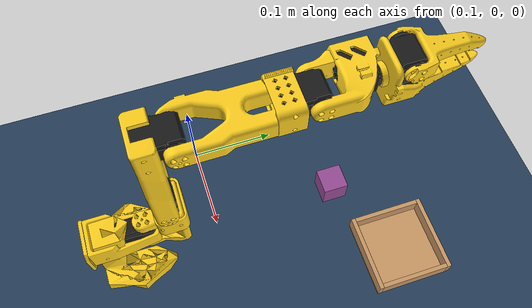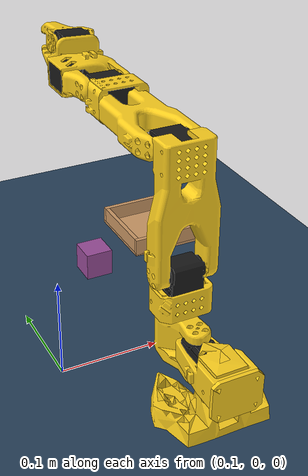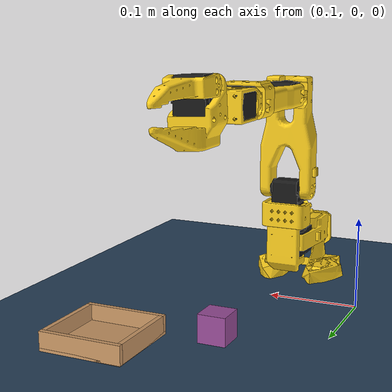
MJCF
<mujoco model="SO101_Pick_Scene">
    <include file="so101_new_calib.xml"/>

    <option timestep=".001" noslip_iterations="20" noslip_tolerance="1e-6">
      <!-- Improved contact solver for better grasping -->
      <!-- Smaller timestep = better contact resolution -->
      <flag contact="enable" override="enable"/>
    </option>

    <default>
      <!-- High friction for grasping -->
      <!-- solimp: softer contacts = better force distribution, less penetration -->
      <geom friction="1.0 0.005 0.0001" solimp="0.99 0.99 0.001" solref="0.01 1"/>
    </default>

    <statistic center="0.2 0.15 0.2" extent=".6"/>

    <visual>
      <headlight diffuse=".4 .4 .4" ambient=".5 .5 .5"/>
      <global azimuth="0" elevation="-30" offheight="480" offwidth="640"/>
      <quality offsamples="8"/>
    </visual>

    <asset>
      <texture type="skybox" builtin="gradient" rgb1=".3 .5 .7" rgb2="0 0 0" width="32" height="512"/>
      <texture name="grid" type="2d" builtin="checker" width="512" height="512" rgb1=".1 .2 .3" rgb2=".2 .3 .4"/>
      <material name="grid" texture="grid" texrepeat="30 30" texuniform="true" reflectance="0"/>
    </asset>

    <worldbody>
      <camera name="top" pos="0.2 0.25 0.5" quat="0.707107 0 0 0.707107" fovy="60"/>

      <!-- Front camera - angled view showing robot and workspace in front -->
      <camera name="front" pos="0.25 0.5 0.05" euler="-1.4 0.2 3.14159" fovy="65"/>
      <light pos="0 0 3" dir="0 0 -1" diffuse="1 1 1" specular=".3 .3 .3"/>
      <light pos="0.2 0.3 .5" mode="targetbodycom" target="block" diffuse=".8 .8 .8" specular=".3 .3 .3"/>
      <geom name="floor" size="3 3 0.01" type="plane" material="grid"/>

      <!-- Block for pick task - positioned in robot's forward workspace (+Y direction) -->
      <body name="block" pos="0.2 0.15 .015">
        <freejoint name="block"/>
        <!-- Block dimensions: 2cm x 3cm x 1.5cm -->
        <!-- High friction for reliable grasping -->
        <!-- margin: prevents penetration by adding a buffer around geometry -->
        <!-- condim: 4 = use friction cone with elliptic approximation for better grip -->
        <!-- softer solimp: allows slight deformation, better force distribution -->
        <geom name="block" type="box" size=".015 .015 .015" mass="0.05" rgba=".6 .3 .6 1"
              friction="2 0.01 0.0001" solimp="0.95 0.95 0.001" solref="0.02 1"
              margin="0.003" condim="4"/>
      </body>

      <!-- Container for drop task - positioned to the right of robot -->
      <body name="container" pos="0.3 0.2 0.01">
        <!-- Container dimensions: 9cm x 9cm x 2cm height (inner 8cm x 8cm) -->
        <!-- Wall thickness: 0.5cm, Wall height: 2cm -->

        <!-- Bottom plate -->
        <geom name="container_bottom" type="box" size="0.045 0.045 0.0025" pos="0 0 -0.00975" rgba="0.8 0.6 0.4 1"/>

        <!-- Side walls -->
        <geom name="container_side_x_neg" type="box" size="0.0025 0.04 0.01" pos="-0.0425 0 0" rgba="0.8 0.6 0.4 1"/>
        <geom name="container_side_x_pos" type="box" size="0.0025 0.04 0.01" pos="0.0425 0 0" rgba="0.8 0.6 0.4 1"/>
        <geom name="container_side_y_neg" type="box" size="0.045 0.0025 0.01" pos="0 -0.0425 0" rgba="0.8 0.6 0.4 1"/>
        <geom name="container_side_y_pos" type="box" size="0.045 0.0025 0.01" pos="0 0.0425 0" rgba="0.8 0.6 0.4 1"/>
      </body>

      <!-- Mocap target for operational space control -->
      <body name="target" pos="0.2 0.15 .3" quat="0 1 0 0" mocap="true">
        <geom name="target" type="box" size=".03 .03 .03" contype="0" conaffinity="0" rgba=".6 .3 .3 0"/>
      </body>
    </worldbody>

    <sensor>
      <framepos name="block_pos" objtype="geom" objname="block"/>
      <framequat name="block_quat" objtype="geom" objname="block"/>

      <!-- SO-101 end-effector sensors -->
      <framepos name="so101/ee_pos" objtype="site" objname="gripperframe"/>
      <framequat name="so101/ee_quat" objtype="site" objname="gripperframe"/>
      <framelinvel name="so101/ee_vel" objtype="site" objname="gripperframe"/>
      <frameangvel name="so101/ee_angvel" objtype="site" objname="gripperframe"/>
    </sensor>
  </mujoco>

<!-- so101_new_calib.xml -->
<!-- Generated using onshape-to-robot -->
<!-- Onshape https://cad.onshape.com/documents/7715cc284bb430fe6dab4ffd/w/4fd0791b683777b02f8d975a/e/826c553ede3b7592eb9ca800 -->
<mujoco model="so101_new_calib">
  <compiler angle="radian" meshdir="assets" autolimits="true"/>
  <default>
    <default class="so101_new_calib">
      <joint damping="1" frictionloss="0.1" armature="0.005"/>
      <position kp="50"/>
      <default class="visual">
        <geom type="mesh" contype="0" conaffinity="0" group="2"/>
      </default>
      <default class="collision">
        <geom group="3" friction="1.5 0.005 0.0001" solimp="0.95 0.95 0.001" solref="0.02 1" margin="0.003" condim="4"/>
      </default>
    </default>
  </default>
  <!-- Additional joints_properties.xml -->
  <default>
    <default class="sts3215">
      <geom contype="0" conaffinity="0"/>
      <joint damping="0.60" frictionloss="0.052" armature="0.028"/>
      <!-- For lerobot this are not exactly the motor params as the Kp and Kd not map 1-to-1 thus motor idendification with lerobot Kp=16 and Kd=32 should actually be done -->
      <position kp="17.8"/>
    </default>
    <default class="backlash">
      <!-- +/- 0.5° of backlash -->
      <joint damping="0.01" frictionloss="0" armature="0.01" limited="true" range="-0.008726646259971648 0.008726646259971648"/>
    </default>
  </default>
  <worldbody>
    <!-- Link base -->
    <!-- Robot oriented to point in +Y direction (forward), positioned at X=0.2m -->
    <!-- Base edge starts at Y=0.0, so base center at Y≈0.05m (assuming ~10cm base depth) -->
    <!-- Quaternion [0.707107, 0, 0, 0.707107] = 90° CCW rotation around Z-axis -->
    <body name="base" pos="0.2 -0.12 0" quat="0.707107 0 0 0.707107" childclass="so101_new_calib">
      <inertial pos="0.0137179 -5.19711e-05 0.0334843" mass="0.147" fullinertia="0.000114686 0.000136117 0.000130364 -4.59787e-07 4.97151e-06 9.75275e-08"/>
      <!-- Part base_motor_holder_so101_v1 -->
      <geom type="mesh" class="visual" pos="-0.00636471 -9.94414e-05 -0.0024" quat="0.5 0.5 0.5 0.5" mesh="base_motor_holder_so101_v1" material="base_motor_holder_so101_v1_material"/>
      <!-- Part base_so101_v2 -->
      <geom type="mesh" class="visual" pos="-0.00636471 -8.97657e-09 -0.0024" quat="0.5 0.5 0.5 0.5" mesh="base_so101_v2" material="base_so101_v2_material"/>
      <!-- Part sts3215_03a_v1 -->
      <geom type="mesh" class="visual" pos="0.0263353 -8.97657e-09 0.0437" quat="1 -2.85511e-16 -9.64433e-17 6.12908e-16" mesh="sts3215_03a_v1" material="sts3215_03a_v1_material"/>
      <!-- Part waveshare_mounting_plate_so101_v2 -->
      <geom type="mesh" class="visual" pos="-0.0309827 -0.000199441 0.0474" quat="0.5 0.5 0.5 0.5" mesh="waveshare_mounting_plate_so101_v2" material="waveshare_mounting_plate_so101_v2_material"/>
      <!-- Frame baseframe -->
      <site group="3" name="baseframe" pos="8.67362e-19 9.55596e-18 3.46945e-18" quat="1 -8.17396e-19 3.78392e-17 2.22045e-16"/>
      <!-- Link shoulder -->
      <body name="shoulder" pos="0.0388353 -8.97657e-09 0.0624" quat="3.56167e-16 1.22818e-15 -1 -4.14635e-16">
        <!-- Joint from base to shoulder -->
        <joint axis="0 0 1" name="shoulder_pan" type="hinge" range="-1.9198621771937616 1.9198621771937634" class="sts3215"/>
        <inertial pos="-0.0307604 -1.66727e-05 -0.0252713" mass="0.100006" fullinertia="8.3759e-05 8.10403e-05 2.39783e-05 7.55525e-08 -1.16342e-06 1.54663e-07"/>
        <!-- Part sts3215_03a_v1_2 -->
        <geom type="mesh" class="visual" pos="-0.0303992 0.000422241 -0.0417" quat="0.5 0.5 0.5 -0.5" mesh="sts3215_03a_v1" material="sts3215_03a_v1_material"/>
        <geom type="mesh" class="collision" pos="-0.0303992 0.000422241 -0.0417" quat="0.5 0.5 0.5 -0.5" mesh="sts3215_03a_v1" material="sts3215_03a_v1_material"/>
        <!-- Part motor_holder_so101_base_v1 -->
        <geom type="mesh" class="visual" pos="-0.0675992 -0.000177759 0.0158499" quat="0.5 0.5 -0.5 0.5" mesh="motor_holder_so101_base_v1" material="motor_holder_so101_base_v1_material"/>
        <geom type="mesh" class="collision" pos="-0.0675992 -0.000177759 0.0158499" quat="0.5 0.5 -0.5 0.5" mesh="motor_holder_so101_base_v1" material="motor_holder_so101_base_v1_material"/>
        <!-- Part rotation_pitch_so101_v1 -->
        <geom type="mesh" class="visual" pos="0.0122008 2.22413e-05 0.0464" quat="0.707107 -0.707107 -0 8.3163e-34" mesh="rotation_pitch_so101_v1" material="rotation_pitch_so101_v1_material"/>
        <geom type="mesh" class="collision" pos="0.0122008 2.22413e-05 0.0464" quat="0.707107 -0.707107 -0 8.3163e-34" mesh="rotation_pitch_so101_v1" material="rotation_pitch_so101_v1_material"/>
        <!-- Link upper_arm -->
        <body name="upper_arm" pos="-0.0303992 -0.0182778 -0.0542" quat="0.5 -0.5 -0.5 -0.5">
          <!-- Joint from shoulder to upper_arm -->
          <joint axis="0 0 1" name="shoulder_lift" type="hinge" range="-1.7453292519943224 1.7453292519943366" class="sts3215"/>
          <inertial pos="-0.0898471 -0.00838224 0.0184089" mass="0.103" fullinertia="4.08002e-05 0.000147318 0.000142487 -1.97819e-05 -4.03016e-08 8.97326e-09"/>
          <!-- Part sts3215_03a_v1_3 -->
          <geom type="mesh" class="visual" pos="-0.11257 -0.0155 0.0187" quat="4.56308e-16 -0.707107 0.707107 -1.37383e-16" mesh="sts3215_03a_v1" material="sts3215_03a_v1_material"/>
          <geom type="mesh" class="collision" pos="-0.11257 -0.0155 0.0187" quat="4.56308e-16 -0.707107 0.707107 -1.37383e-16" mesh="sts3215_03a_v1" material="sts3215_03a_v1_material"/>
          <!-- Part upper_arm_so101_v1 -->
          <geom type="mesh" class="visual" pos="-0.065085 0.012 0.0182" quat="0 1 0 0" mesh="upper_arm_so101_v1" material="upper_arm_so101_v1_material"/>
          <geom type="mesh" class="collision" pos="-0.065085 0.012 0.0182" quat="0 1 0 0" mesh="upper_arm_so101_v1" material="upper_arm_so101_v1_material"/>
          <!-- Link lower_arm -->
          <body name="lower_arm" pos="-0.11257 -0.028 1.73763e-16" quat="0.707107 -5.98613e-17 -2.58051e-17 0.707107">
            <!-- Joint from upper_arm to lower_arm -->
            <!-- Note: 5-degree calibration offset applied to joint range -->
            <joint axis="0 0 1" name="elbow_flex" type="hinge" range="-1.69 1.69" class="sts3215"/>
            <inertial pos="-0.0980701 0.00324376 0.0182831" mass="0.104" fullinertia="2.87438e-05 0.000159844 0.00014529 7.41152e-06 1.26409e-06 -4.90188e-08"/>
            <!-- Part under_arm_so101_v1 -->
            <geom type="mesh" class="visual" pos="-0.0648499 -0.032 0.0182" quat="0 1 0 0" mesh="under_arm_so101_v1" material="under_arm_so101_v1_material"/>
            <geom type="mesh" class="collision" pos="-0.0648499 -0.032 0.0182" quat="0 1 0 0" mesh="under_arm_so101_v1" material="under_arm_so101_v1_material"/>
            <!-- Part motor_holder_so101_wrist_v1 -->
            <geom type="mesh" class="visual" pos="-0.0648499 -0.032 0.018" quat="3.92687e-16 -1 -1.9186e-15 -6.38378e-16" mesh="motor_holder_so101_wrist_v1" material="motor_holder_so101_wrist_v1_material"/>
            <geom type="mesh" class="collision" pos="-0.0648499 -0.032 0.018" quat="3.92687e-16 -1 -1.9186e-15 -6.38378e-16" mesh="motor_holder_so101_wrist_v1" material="motor_holder_so101_wrist_v1_material"/>
            <!-- Part sts3215_03a_v1_4 -->
            <geom type="mesh" class="visual" pos="-0.1224 0.0052 0.0187" quat="7.21645e-16 1.56949e-15 1 -3.33067e-16" mesh="sts3215_03a_v1" material="sts3215_03a_v1_material"/>
            <geom type="mesh" class="collision" pos="-0.1224 0.0052 0.0187" quat="7.21645e-16 1.56949e-15 1 -3.33067e-16" mesh="sts3215_03a_v1" material="sts3215_03a_v1_material"/>
            <!-- Link wrist -->
            <body name="wrist" pos="-0.1349 0.0052 3.62355e-17" quat="0.707107 9.58722e-16 -7.51313e-16 -0.707107">
              <!-- Joint from lower_arm to wrist -->
              <joint axis="0 0 1" name="wrist_flex" type="hinge" range="-1.6580628494556928 1.6580627293335335" class="sts3215"/>
              <inertial pos="-0.000103312 -0.0386143 0.0281156" mass="0.079" fullinertia="3.68263e-05 2.5391e-05 2.1e-05 1.7893e-08 -5.28128e-08 3.6412e-06"/>
              <!-- Part sts3215_03a_no_horn_v1 -->
              <geom type="mesh" class="visual" pos="8.32667e-17 -0.0424 0.0306" quat="0.5 0.5 0.5 -0.5" mesh="sts3215_03a_no_horn_v1" material="sts3215_03a_no_horn_v1_material"/>
              <geom type="mesh" class="collision" pos="8.32667e-17 -0.0424 0.0306" quat="0.5 0.5 0.5 -0.5" mesh="sts3215_03a_no_horn_v1" material="sts3215_03a_no_horn_v1_material"/>
              <!-- Part wrist_roll_pitch_so101_v2 -->
              <geom type="mesh" class="visual" pos="0 -0.028 0.0181" quat="0.5 -0.5 -0.5 -0.5" mesh="wrist_roll_pitch_so101_v2" material="wrist_roll_pitch_so101_v2_material"/>
              <geom type="mesh" class="collision" pos="0 -0.028 0.0181" quat="0.5 -0.5 -0.5 -0.5" mesh="wrist_roll_pitch_so101_v2" material="wrist_roll_pitch_so101_v2_material"/>
              <site name="wrist_site" pos="0 0 0" quat="1 0 0 0" size="0.005" group="3"/>
              <!-- Link gripper -->
              <body name="gripper" pos="5.55112e-17 -0.0611 0.0181" quat="0.0172091 -0.0172091 0.706897 0.706897">
                <!-- Joint from wrist to gripper -->
                <joint axis="0 0 1" name="wrist_roll" type="hinge" range="-2.7438472969992493 2.841206309382605" class="sts3215"/>
                <inertial pos="0.000213627 0.000245138 -0.025187" mass="0.087" fullinertia="2.75087e-05 4.33657e-05 3.45059e-05 -3.35241e-07 -5.7352e-06 -5.17847e-08"/>
                <!-- Part sts3215_03a_v1_5 -->
                <geom type="mesh" class="visual" pos="0.0077 0.0001 -0.0234" quat="0.707107 -0.707107 1.66015e-15 6.45094e-15" mesh="sts3215_03a_v1" material="sts3215_03a_v1_material"/>
                <geom type="mesh" class="collision" pos="0.0077 0.0001 -0.0234" quat="0.707107 -0.707107 1.66015e-15 6.45094e-15" mesh="sts3215_03a_v1" material="sts3215_03a_v1_material"/>
                <!-- Part wrist_roll_follower_so101_v1 -->
                <geom type="mesh" class="visual" pos="8.32667e-17 -0.000218214 0.000949706" quat="0 1 0 0" mesh="wrist_roll_follower_so101_v1" material="wrist_roll_follower_so101_v1_material"/>
                <geom type="mesh" class="collision" pos="8.32667e-17 -0.000218214 0.000949706" quat="0 1 0 0" mesh="wrist_roll_follower_so101_v1_hull_00"/>
                <geom type="mesh" class="collision" pos="8.32667e-17 -0.000218214 0.000949706" quat="0 1 0 0" mesh="wrist_roll_follower_so101_v1_hull_01"/>
                <geom type="mesh" class="collision" pos="8.32667e-17 -0.000218214 0.000949706" quat="0 1 0 0" mesh="wrist_roll_follower_so101_v1_hull_02"/>
                <geom type="mesh" class="collision" pos="8.32667e-17 -0.000218214 0.000949706" quat="0 1 0 0" mesh="wrist_roll_follower_so101_v1_hull_03"/>
                <geom type="mesh" class="collision" pos="8.32667e-17 -0.000218214 0.000949706" quat="0 1 0 0" mesh="wrist_roll_follower_so101_v1_hull_04"/>
                <geom type="mesh" class="collision" pos="8.32667e-17 -0.000218214 0.000949706" quat="0 1 0 0" mesh="wrist_roll_follower_so101_v1_hull_05"/>
                <geom type="mesh" class="collision" pos="8.32667e-17 -0.000218214 0.000949706" quat="0 1 0 0" mesh="wrist_roll_follower_so101_v1_hull_06"/>
                <geom type="mesh" class="collision" pos="8.32667e-17 -0.000218214 0.000949706" quat="0 1 0 0" mesh="wrist_roll_follower_so101_v1_hull_07"/>
                <geom type="mesh" class="collision" pos="8.32667e-17 -0.000218214 0.000949706" quat="0 1 0 0" mesh="wrist_roll_follower_so101_v1_hull_08"/>
                <geom type="mesh" class="collision" pos="8.32667e-17 -0.000218214 0.000949706" quat="0 1 0 0" mesh="wrist_roll_follower_so101_v1_hull_09"/>
                <geom type="mesh" class="collision" pos="8.32667e-17 -0.000218214 0.000949706" quat="0 1 0 0" mesh="wrist_roll_follower_so101_v1_hull_10"/>
                <geom type="mesh" class="collision" pos="8.32667e-17 -0.000218214 0.000949706" quat="0 1 0 0" mesh="wrist_roll_follower_so101_v1_hull_11"/>
                <!-- Frame gripperframe -->
                <site group="3" name="gripperframe" pos="-0.0079 -0.000218121 -0.0981274" quat="0.707107 -0 0.707107 -2.37788e-17"/>
                <camera name="wrist" pos="-0.0050 0.0600 -0.0620" quat="0.923880 -0.382683 0 0" fovy="60.4"/>
                <!-- Link moving_jaw_so101_v1 -->
                <body name="moving_jaw_so101_v1" pos="0.0202 0.0188 -0.0234" quat="0.707107 0.707107 -1.85362e-08 1.85362e-08">
                  <!-- Joint from gripper to moving_jaw_so101_v1 -->
                  <joint axis="0 0 1" name="gripper" type="hinge" range="-0.17453297762778586 1.7453291995659765" class="sts3215"/>
                  <inertial pos="-0.00157495 -0.0300244 0.0192755" mass="0.012" fullinertia="6.61427e-06 1.89032e-06 5.28738e-06 -3.19807e-07 -5.90717e-09 -1.09945e-07"/>
                  <!-- Part moving_jaw_so101_v1 -->
                  <geom type="mesh" class="visual" pos="-5.55112e-17 -5.55112e-17 0.0189" quat="1 -0 3.00524e-16 -2.00834e-17" mesh="moving_jaw_so101_v1" material="moving_jaw_so101_v1_material"/>
                  <geom type="mesh" class="collision" pos="-5.55112e-17 -5.55112e-17 0.0189" quat="1 -0 3.00524e-16 -2.00834e-17" mesh="moving_jaw_so101_v1_hull_00"/>
                  <geom type="mesh" class="collision" pos="-5.55112e-17 -5.55112e-17 0.0189" quat="1 -0 3.00524e-16 -2.00834e-17" mesh="moving_jaw_so101_v1_hull_01"/>
                  <geom type="mesh" class="collision" pos="-5.55112e-17 -5.55112e-17 0.0189" quat="1 -0 3.00524e-16 -2.00834e-17" mesh="moving_jaw_so101_v1_hull_02"/>
                  <geom type="mesh" class="collision" pos="-5.55112e-17 -5.55112e-17 0.0189" quat="1 -0 3.00524e-16 -2.00834e-17" mesh="moving_jaw_so101_v1_hull_03"/>
                  <geom type="mesh" class="collision" pos="-5.55112e-17 -5.55112e-17 0.0189" quat="1 -0 3.00524e-16 -2.00834e-17" mesh="moving_jaw_so101_v1_hull_04"/>
                  <geom type="mesh" class="collision" pos="-5.55112e-17 -5.55112e-17 0.0189" quat="1 -0 3.00524e-16 -2.00834e-17" mesh="moving_jaw_so101_v1_hull_05"/>
                  <geom type="mesh" class="collision" pos="-5.55112e-17 -5.55112e-17 0.0189" quat="1 -0 3.00524e-16 -2.00834e-17" mesh="moving_jaw_so101_v1_hull_06"/>
                  <geom type="mesh" class="collision" pos="-5.55112e-17 -5.55112e-17 0.0189" quat="1 -0 3.00524e-16 -2.00834e-17" mesh="moving_jaw_so101_v1_hull_07"/>
                  <geom type="mesh" class="collision" pos="-5.55112e-17 -5.55112e-17 0.0189" quat="1 -0 3.00524e-16 -2.00834e-17" mesh="moving_jaw_so101_v1_hull_08"/>
                  <geom type="mesh" class="collision" pos="-5.55112e-17 -5.55112e-17 0.0189" quat="1 -0 3.00524e-16 -2.00834e-17" mesh="moving_jaw_so101_v1_hull_09"/>
                  <geom type="mesh" class="collision" pos="-5.55112e-17 -5.55112e-17 0.0189" quat="1 -0 3.00524e-16 -2.00834e-17" mesh="moving_jaw_so101_v1_hull_10"/>
                  <geom type="mesh" class="collision" pos="-5.55112e-17 -5.55112e-17 0.0189" quat="1 -0 3.00524e-16 -2.00834e-17" mesh="moving_jaw_so101_v1_hull_11"/>
                </body>
              </body>
            </body>
          </body>
        </body>
      </body>
    </body>
  </worldbody>
  <asset>
    <mesh file="waveshare_mounting_plate_so101_v2.stl"/>
    <mesh file="sts3215_03a_v1.stl"/>
    <mesh file="motor_holder_so101_base_v1.stl"/>
    <mesh file="wrist_roll_follower_so101_v1.stl"/>
    <mesh file="moving_jaw_so101_v1.stl"/>
    <mesh file="base_motor_holder_so101_v1.stl"/>
    <mesh file="upper_arm_so101_v1.stl"/>
    <mesh file="wrist_roll_pitch_so101_v2.stl"/>
    <mesh file="under_arm_so101_v1.stl"/>
    <mesh file="rotation_pitch_so101_v1.stl"/>
    <mesh file="motor_holder_so101_wrist_v1.stl"/>
    <mesh file="sts3215_03a_no_horn_v1.stl"/>
    <mesh file="base_so101_v2.stl"/>
    <material name="base_motor_holder_so101_v1_material" rgba="1 0.82 0.12 1"/>
    <material name="base_so101_v2_material" rgba="1 0.82 0.12 1"/>
    <material name="sts3215_03a_v1_material" rgba="0.1 0.1 0.1 1"/>
    <material name="waveshare_mounting_plate_so101_v2_material" rgba="1 0.82 0.12 1"/>
    <material name="motor_holder_so101_base_v1_material" rgba="1 0.82 0.12 1"/>
    <material name="rotation_pitch_so101_v1_material" rgba="1 0.82 0.12 1"/>
    <material name="upper_arm_so101_v1_material" rgba="1 0.82 0.12 1"/>
    <material name="under_arm_so101_v1_material" rgba="1 0.82 0.12 1"/>
    <material name="motor_holder_so101_wrist_v1_material" rgba="1 0.82 0.12 1"/>
    <material name="sts3215_03a_no_horn_v1_material" rgba="0.1 0.1 0.1 1.0"/>
    <material name="wrist_roll_pitch_so101_v2_material" rgba="1 0.82 0.12 1"/>
    <material name="wrist_roll_follower_so101_v1_material" rgba="1 0.82 0.12 1"/>
    <material name="moving_jaw_so101_v1_material" rgba="1 0.82 0.12 1"/>

    <mesh file="collision/wrist_roll_follower_so101_v1_hull_00.stl"/>
    <mesh file="collision/wrist_roll_follower_so101_v1_hull_01.stl"/>
    <mesh file="collision/wrist_roll_follower_so101_v1_hull_02.stl"/>
    <mesh file="collision/wrist_roll_follower_so101_v1_hull_03.stl"/>
    <mesh file="collision/wrist_roll_follower_so101_v1_hull_04.stl"/>
    <mesh file="collision/wrist_roll_follower_so101_v1_hull_05.stl"/>
    <mesh file="collision/wrist_roll_follower_so101_v1_hull_06.stl"/>
    <mesh file="collision/wrist_roll_follower_so101_v1_hull_07.stl"/>
    <mesh file="collision/wrist_roll_follower_so101_v1_hull_08.stl"/>
    <mesh file="collision/wrist_roll_follower_so101_v1_hull_09.stl"/>
    <mesh file="collision/wrist_roll_follower_so101_v1_hull_10.stl"/>
    <mesh file="collision/wrist_roll_follower_so101_v1_hull_11.stl"/>
    <mesh file="collision/moving_jaw_so101_v1_hull_00.stl"/>
    <mesh file="collision/moving_jaw_so101_v1_hull_01.stl"/>
    <mesh file="collision/moving_jaw_so101_v1_hull_02.stl"/>
    <mesh file="collision/moving_jaw_so101_v1_hull_03.stl"/>
    <mesh file="collision/moving_jaw_so101_v1_hull_04.stl"/>
    <mesh file="collision/moving_jaw_so101_v1_hull_05.stl"/>
    <mesh file="collision/moving_jaw_so101_v1_hull_06.stl"/>
    <mesh file="collision/moving_jaw_so101_v1_hull_07.stl"/>
    <mesh file="collision/moving_jaw_so101_v1_hull_08.stl"/>
    <mesh file="collision/moving_jaw_so101_v1_hull_09.stl"/>
    <mesh file="collision/moving_jaw_so101_v1_hull_10.stl"/>
    <mesh file="collision/moving_jaw_so101_v1_hull_11.stl"/>
  </asset>
  <actuator>
    <position class="sts3215" name="shoulder_pan" joint="shoulder_pan" forcerange="-3.35 3.35" ctrlrange="-1.91986 1.91986"/>
    <position class="sts3215" name="shoulder_lift" joint="shoulder_lift" forcerange="-3.35 3.35" ctrlrange="-1.74533 1.74533"/>
    <position class="sts3215" name="elbow_flex" joint="elbow_flex" forcerange="-3.35 3.35" ctrlrange="-1.69 1.69"/>
    <position class="sts3215" name="wrist_flex" joint="wrist_flex" forcerange="-3.35 3.35" ctrlrange="-1.65806 1.65806"/>
    <position class="sts3215" name="wrist_roll" joint="wrist_roll" forcerange="-3.35 3.35" ctrlrange="-2.74385 2.84121"/>
    <position class="sts3215" name="gripper" joint="gripper" forcerange="-3.35 3.35" ctrlrange="-0.17453 1.74533"/>
  </actuator>
  <equality/>
</mujoco>
